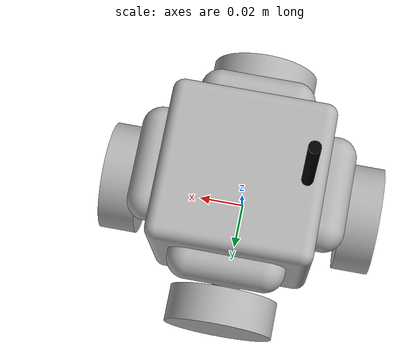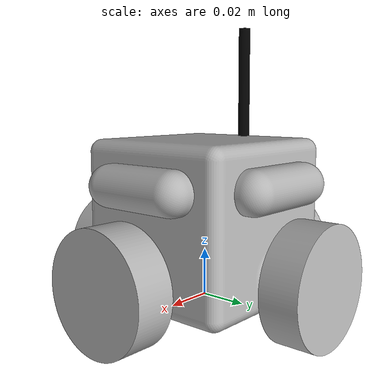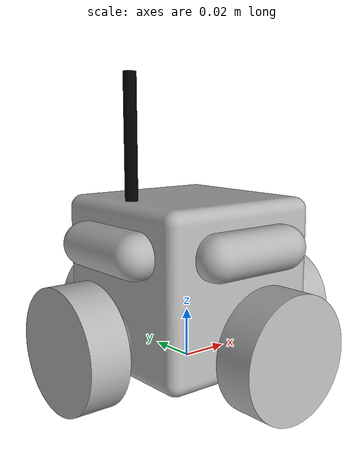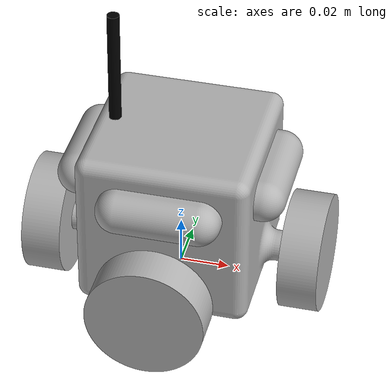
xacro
<?xml version="1.0" ?>
<robot name="minibot_urdf" xmlns:xacro="http://www.ros.org/wiki/xacro">

<xacro:include filename="$(find minibot)/urdf/materials.xacro" />
<xacro:include filename="$(find minibot)/urdf/minibot_urdf.gazebo" />

<!-- SLAM Toolbox expects a base_footprint frame by default -->
<link name="base_footprint"/>
<joint name="base_footprint_joint" type="fixed">
  <origin xyz="0 0 0" rpy="0 0 0"/>
  <parent link="base_footprint"/>
  <child link="base_link"/>
</joint>

<link name="base_link">
  <inertial>
    <origin xyz="1.2942974061613468e-13 -1.3261759786386824e-13 0.03341632448103979" rpy="0 0 0"/>
    <mass value="0.262"/>
    <!-- ixx/iyy/izz = original × 0.5712 -->
    <inertia ixx="0.000205" iyy="0.000205" izz="0.000214" ixy="-0.0" iyz="-0.0" ixz="0.0"/>
  </inertial>
  <visual>
    <origin xyz="0 0 0" rpy="0 0 0"/>
    <geometry>
      <mesh filename="package://minibot/meshes/base_link.stl" scale="0.001 0.001 0.001"/>
    </geometry>
    <material name="silver"/>
  </visual>
  <collision>
    <origin xyz="0 0 0" rpy="0 0 0"/>
    <geometry>
      <mesh filename="package://minibot/meshes/base_link.stl" scale="0.001 0.001 0.001"/>
    </geometry>
  </collision>
</link>

<!-- ── WHEELS ───────────────────────────────────────────────────── -->
<!-- Each wheel = 48 mm omni (33 g) + N20 motor (11 g) = 44 g      -->
<!-- Inertia axes: spinning axis carries iyy_max for front/back     -->
<!--               and ixx_max for right/left (axis-aligned)        -->

<link name="wheel_front_1">
  <inertial>
    <origin xyz="9.816526794640485e-18 0.008 3.469446951953614e-18" rpy="0 0 0"/>
    <mass value="0.044"/>
    <!-- spin axis = Y → iyy largest; ixx=izz × 0.6971 -->
    <inertia ixx="6.97e-06" iyy="1.255e-05" izz="6.97e-06" ixy="0.0" iyz="0.0" ixz="0.0"/>
  </inertial>
  <visual>
    <origin xyz="-0.0 -0.045 -0.015" rpy="0 0 0"/>
    <geometry>
      <mesh filename="package://minibot/meshes/wheel_front_1.stl" scale="0.001 0.001 0.001"/>
    </geometry>
    <material name="silver"/>
  </visual>
  <!-- Cylinder collision: centre at link origin = wheel axle, axis along spin-axis Y -->
  <!-- radius=0.024m (48mm dia), length=0.014m (wheel width). Visual stays as mesh. -->
  <collision>
    <origin xyz="0 0 0" rpy="1.5708 0 0"/>
    <geometry>
      <cylinder radius="0.024" length="0.014"/>
    </geometry>
  </collision>
</link>

<link name="wheel_right_1">
  <inertial>
    <origin xyz="0.008 4.9082633973202426e-18 3.469446951953614e-18" rpy="0 0 0"/>
    <mass value="0.044"/>
    <!-- spin axis = X → ixx largest -->
    <inertia ixx="1.255e-05" iyy="6.97e-06" izz="6.97e-06" ixy="0.0" iyz="0.0" ixz="0.0"/>
  </inertial>
  <visual>
    <origin xyz="-0.045 -0.0 -0.015" rpy="0 0 0"/>
    <geometry>
      <mesh filename="package://minibot/meshes/wheel_right_1.stl" scale="0.001 0.001 0.001"/>
    </geometry>
    <material name="silver"/>
  </visual>
  <!-- Cylinder collision: centre at link origin = wheel axle, axis along spin-axis X -->
  <collision>
    <origin xyz="0 0 0" rpy="0 1.5708 0"/>
    <geometry>
      <cylinder radius="0.024" length="0.014"/>
    </geometry>
  </collision>
</link>

<link name="wheel_back_1">
  <inertial>
    <origin xyz="-4.9082633973202426e-18 -0.008 3.469446951953614e-18" rpy="0 0 0"/>
    <mass value="0.044"/>
    <!-- spin axis = -Y → iyy largest -->
    <inertia ixx="6.97e-06" iyy="1.255e-05" izz="6.97e-06" ixy="0.0" iyz="-0.0" ixz="0.0"/>
  </inertial>
  <visual>
    <origin xyz="0.0 0.045 -0.015" rpy="0 0 0"/>
    <geometry>
      <mesh filename="package://minibot/meshes/wheel_back_1.stl" scale="0.001 0.001 0.001"/>
    </geometry>
    <material name="silver"/>
  </visual>
  <!-- Cylinder collision: centre at link origin = wheel axle, axis along spin-axis -Y (same as Y) -->
  <collision>
    <origin xyz="0 0 0" rpy="1.5708 0 0"/>
    <geometry>
      <cylinder radius="0.024" length="0.014"/>
    </geometry>
  </collision>
</link>

<link name="wheel_left_1">
  <inertial>
    <origin xyz="-0.008 9.816526794640485e-18 3.469446951953614e-18" rpy="0 0 0"/>
    <mass value="0.044"/>
    <!-- spin axis = -X → ixx largest -->
    <inertia ixx="1.255e-05" iyy="6.97e-06" izz="6.97e-06" ixy="0.0" iyz="0.0" ixz="-0.0"/>
  </inertial>
  <visual>
    <origin xyz="0.045 -0.0 -0.015" rpy="0 0 0"/>
    <geometry>
      <mesh filename="package://minibot/meshes/wheel_left_1.stl" scale="0.001 0.001 0.001"/>
    </geometry>
    <material name="silver"/>
  </visual>
  <!-- Cylinder collision: centre at link origin = wheel axle, axis along spin-axis -X (same as X) -->
  <collision>
    <origin xyz="0 0 0" rpy="0 1.5708 0"/>
    <geometry>
      <cylinder radius="0.024" length="0.014"/>
    </geometry>
  </collision>
</link>

<!-- ── HC-SR04 SONARS ───────────────────────────────────────────── -->
<link name="sensor_front_1">
  <inertial>
    <origin xyz="0 0 0" rpy="0 0 0"/>
    <mass value="0.0085"/>
    <inertia ixx="1.68e-06" iyy="1.68e-06" izz="1.68e-06" ixy="0" iyz="0" ixz="0"/>
  </inertial>
  <visual>
    <origin xyz="0.0 -0.035 -0.0625" rpy="0 0 0"/>
    <geometry>
      <mesh filename="package://minibot/meshes/sensor_front_1.stl" scale="0.001 0.001 0.001"/>
    </geometry>
    <material name="silver"/>
  </visual>
</link>

<link name="sensor_back_1">
  <inertial>
    <origin xyz="0 0 0" rpy="0 0 0"/>
    <mass value="0.0085"/>
    <inertia ixx="1.68e-06" iyy="1.68e-06" izz="1.68e-06" ixy="0" iyz="0" ixz="0"/>
  </inertial>
  <visual>
    <origin xyz="0.0 0.035 -0.0625" rpy="0 0 0"/>
    <geometry>
      <mesh filename="package://minibot/meshes/sensor_back_1.stl" scale="0.001 0.001 0.001"/>
    </geometry>
    <material name="silver"/>
  </visual>
</link>

<link name="sensor_right_1">
  <inertial>
    <origin xyz="0 0 0" rpy="0 0 0"/>
    <mass value="0.0085"/>
    <inertia ixx="1.68e-06" iyy="1.68e-06" izz="1.68e-06" ixy="0" iyz="0" ixz="0"/>
  </inertial>
  <visual>
    <origin xyz="-0.035 0.0 -0.0625" rpy="0 0 0"/>
    <geometry>
      <mesh filename="package://minibot/meshes/sensor_right_1.stl" scale="0.001 0.001 0.001"/>
    </geometry>
    <material name="silver"/>
  </visual>
</link>

<link name="sensor_left_1">
  <inertial>
    <origin xyz="0 0 0" rpy="0 0 0"/>
    <mass value="0.0085"/>
    <inertia ixx="1.68e-06" iyy="1.68e-06" izz="1.68e-06" ixy="0" iyz="0" ixz="0"/>
  </inertial>
  <visual>
    <origin xyz="0.035 0.0 -0.0625" rpy="0 0 0"/>
    <geometry>
      <mesh filename="package://minibot/meshes/sensor_left_1.stl" scale="0.001 0.001 0.001"/>
    </geometry>
    <material name="silver"/>
  </visual>
</link>

<!-- ── WHEEL JOINTS ─────────────────────────────────────────────── -->
<!-- type="continuous" → position-unlimited rotation                -->

<joint name="wheel_front_joint" type="continuous">
  <origin xyz="0.0 0.045 0.015" rpy="0 0 0"/>
  <parent link="base_link"/>
  <child link="wheel_front_1"/>
  <axis xyz="0.0 1.0 0.0"/>
  <limit effort="0.05" velocity="31.416"/>
  <dynamics damping="0.001" friction="0.01"/>
</joint>

<joint name="wheel_right_joint" type="continuous">
  <origin xyz="0.045 0.0 0.015" rpy="0 0 0"/>
  <parent link="base_link"/>
  <child link="wheel_right_1"/>
  <axis xyz="1.0 0.0 0.0"/>
  <limit effort="0.05" velocity="31.416"/>
  <dynamics damping="0.001" friction="0.01"/>
</joint>

<joint name="wheel_back_joint" type="continuous">
  <origin xyz="0.0 -0.045 0.015" rpy="0 0 0"/>
  <parent link="base_link"/>
  <child link="wheel_back_1"/>
  <axis xyz="0.0 -1.0 0.0"/>
  <limit effort="0.05" velocity="31.416"/>
  <dynamics damping="0.001" friction="0.01"/>
</joint>

<joint name="wheel_left_joint" type="continuous">
  <origin xyz="-0.045 0.0 0.015" rpy="0 0 0"/>
  <parent link="base_link"/>
  <child link="wheel_left_1"/>
  <axis xyz="-1.0 0.0 0.0"/>
  <limit effort="0.05" velocity="31.416"/>
  <dynamics damping="0.001" friction="0.01"/>
</joint>

<joint name="sensor_front_joint" type="fixed">
  <origin xyz="0.0 0.035 0.0625" rpy="0 0 0"/>
  <parent link="base_link"/>
  <child link="sensor_front_1"/>
</joint>

<joint name="sensor_back_joint" type="fixed">
  <origin xyz="0.0 -0.035 0.0625" rpy="0 0 0"/>
  <parent link="base_link"/>
  <child link="sensor_back_1"/>
</joint>

<joint name="sensor_right_joint" type="fixed">
  <origin xyz="0.035 0.0 0.0625" rpy="0 0 0"/>
  <parent link="base_link"/>
  <child link="sensor_right_1"/>
</joint>

<joint name="sensor_left_joint" type="fixed">
  <origin xyz="-0.035 0.0 0.0625" rpy="0 0 0"/>
  <parent link="base_link"/>
  <child link="sensor_left_1"/>
</joint>

<ros2_control name="GazeboSystem" type="system">
  <hardware>
    <plugin>gazebo_ros2_control/GazeboSystem</plugin>
  </hardware>

  <!-- wheel_front_1  spin axis = +Y -->
  <joint name="wheel_front_joint">
    <command_interface name="velocity">
      <param name="min">-31.416</param>
      <param name="max"> 31.416</param>
    </command_interface>
    <state_interface name="position"/>
    <state_interface name="velocity"/>
  </joint>

  <!-- wheel_right_1  spin axis = +X -->
  <joint name="wheel_right_joint">
    <command_interface name="velocity">
      <param name="min">-31.416</param>
      <param name="max"> 31.416</param>
    </command_interface>
    <state_interface name="position"/>
    <state_interface name="velocity"/>
  </joint>

  <!-- wheel_back_1   spin axis = -Y -->
  <joint name="wheel_back_joint">
    <command_interface name="velocity">
      <param name="min">-31.416</param>
      <param name="max"> 31.416</param>
    </command_interface>
    <state_interface name="position"/>
    <state_interface name="velocity"/>
  </joint>

  <!-- wheel_left_1   spin axis = -X -->
  <joint name="wheel_left_joint">
    <command_interface name="velocity">
      <param name="min">-31.416</param>
      <param name="max"> 31.416</param>
    </command_interface>
    <state_interface name="position"/>
    <state_interface name="velocity"/>
  </joint>
</ros2_control>

<!-- ── NRF24L01 Transceiver ─────────────────────────────────────── -->
<link name="nrf24l01_link">
  <inertial>
    <mass value="0.0017"/>
    <origin xyz="0 0 0" rpy="0 0 0"/>
    <inertia ixx="1e-6" iyy="1e-6" izz="1e-6" ixy="0" iyz="0" ixz="0"/>
  </inertial>
  <visual>
    <!-- PCB -->
    <origin xyz="0 0 0" rpy="0 0 0"/>
    <geometry>
      <box size="0.015 0.029 0.0015"/>
    </geometry>
    <material name="green">
      <color rgba="0 0.8 0 1"/>
    </material>
  </visual>
  <visual>
    <!-- Antenna -->
    <origin xyz="-0.007 0 0.04" rpy="0 0 0"/>
    <geometry>
      <cylinder radius="0.0025" length="0.08"/>
    </geometry>
    <material name="black">
      <color rgba="0 0 0 1"/>
    </material>
  </visual>
  <collision>
    <origin xyz="0 0 0.04" rpy="0 0 0"/>
    <geometry>
      <cylinder radius="0.01" length="0.08"/>
    </geometry>
  </collision>
</link>

<joint name="nrf24l01_joint" type="fixed">
  <origin xyz="-0.02 0.0 0.035" rpy="0 0 0"/>
  <parent link="base_link"/>
  <child link="nrf24l01_link"/>
</joint>

</robot>

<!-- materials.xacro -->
<robot name="minibot_urdf" xmlns:xacro="http://www.ros.org/wiki/xacro" >

<material name="silver">
  <color rgba="0.700 0.700 0.700 1.000"/>
</material>

</robot>

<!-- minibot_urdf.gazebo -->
<robot name="minibot_urdf" xmlns:xacro="http://www.ros.org/wiki/xacro">

<xacro:property name="body_color" value="Gazebo/Silver" />

<gazebo>
  <plugin name="gazebo_ros2_control" filename="libgazebo_ros2_control.so">
    <parameters>$(find minibot)/config/controllers.yaml</parameters>
    <ros>
      <namespace>/</namespace>
    </ros>
  </plugin>
</gazebo>

<gazebo reference="base_link">
  <material>${body_color}</material>
  <mu1>0.4</mu1>
  <mu2>0.4</mu2>
  <selfCollide>false</selfCollide>
  <gravity>true</gravity>
</gazebo>

<!-- GROUND TRUTH ODOMETRY PLUGIN -->
<gazebo>
  <plugin name="gazebo_ros_p3d" filename="libgazebo_ros_p3d.so">
    <ros>
      <namespace>/</namespace>
      <remapping>odom:=odom</remapping>
    </ros>
    <frame_name>odom</frame_name>
    <body_name>base_footprint</body_name>
    <update_rate>50.0</update_rate>
    <gaussian_noise>0.01</gaussian_noise>
  </plugin>
</gazebo>

<gazebo reference="wheel_front_1">
  <material>${body_color}</material>
  <mu1>1.0</mu1>
  <mu2>0.0</mu2>
  <fdir1>1 0 0</fdir1>
  <kp>1000000.0</kp>
  <kd>1.0</kd>
  <selfCollide>false</selfCollide>
</gazebo>

<gazebo reference="wheel_right_1">
  <material>${body_color}</material>
  <mu1>1.0</mu1>
  <mu2>0.0</mu2>
  <fdir1>0 1 0</fdir1>
  <kp>1000000.0</kp>
  <kd>1.0</kd>
  <selfCollide>false</selfCollide>
</gazebo>

<gazebo reference="wheel_back_1">
  <material>${body_color}</material>
  <mu1>1.0</mu1>
  <mu2>0.0</mu2>
  <fdir1>1 0 0</fdir1>
  <kp>1000000.0</kp>
  <kd>1.0</kd>
  <selfCollide>false</selfCollide>
</gazebo>

<gazebo reference="wheel_left_1">
  <material>${body_color}</material>
  <mu1>1.0</mu1>
  <mu2>0.0</mu2>
  <fdir1>0 1 0</fdir1>
  <kp>1000000.0</kp>
  <kd>1.0</kd>
  <selfCollide>false</selfCollide>
</gazebo>

<gazebo reference="sensor_front_1">
  <sensor name="sensor_front" type="ray">
    <pose>0 0 0 0 0 1.570796</pose>
    <visualize>true</visualize>
    <update_rate>10</update_rate>
    <ray>
      <scan>
        <horizontal>
          <samples>120</samples>
          <resolution>1</resolution>
          <min_angle>-1.047197</min_angle>
          <max_angle>1.047197</max_angle>
        </horizontal>
      </scan>
      <range>
        <min>0.02</min>
        <max>4.5</max>
        <resolution>0.01</resolution>
      </range>
    </ray>
    <plugin name="gazebo_ros_front_sonar" filename="libgazebo_ros_ray_sensor.so">
      <ros>
        <remapping>~/out:=/scan/front</remapping>
      </ros>
      <output_type>sensor_msgs/LaserScan</output_type>
      <frame_name>sensor_front_1</frame_name>
    </plugin>
  </sensor>
</gazebo>

<gazebo reference="sensor_back_1">
  <sensor name="sensor_back" type="ray">
    <pose>0 0 0 0 0 -1.570796</pose>
    <visualize>true</visualize>
    <update_rate>10</update_rate>
    <ray>
      <scan>
        <horizontal>
          <samples>120</samples>
          <resolution>1</resolution>
          <min_angle>-1.047197</min_angle>
          <max_angle>1.047197</max_angle>
        </horizontal>
      </scan>
      <range>
        <min>0.02</min>
        <max>4.5</max>
        <resolution>0.01</resolution>
      </range>
    </ray>
    <plugin name="gazebo_ros_back_sonar" filename="libgazebo_ros_ray_sensor.so">
      <ros>
        <remapping>~/out:=/scan/back</remapping>
      </ros>
      <output_type>sensor_msgs/LaserScan</output_type>
      <frame_name>sensor_back_1</frame_name>
    </plugin>
  </sensor>
</gazebo>

<gazebo reference="sensor_left_1">
  <sensor name="sensor_left" type="ray">
    <pose>0 0 0 0 0 3.141592</pose>
    <visualize>true</visualize>
    <update_rate>10</update_rate>
    <ray>
      <scan>
        <horizontal>
          <samples>120</samples>
          <resolution>1</resolution>
          <min_angle>-1.047197</min_angle>
          <max_angle>1.047197</max_angle>
        </horizontal>
      </scan>
      <range>
        <min>0.02</min>
        <max>4.5</max>
        <resolution>0.01</resolution>
      </range>
    </ray>
    <plugin name="gazebo_ros_left_sonar" filename="libgazebo_ros_ray_sensor.so">
      <ros>
        <remapping>~/out:=/scan/left</remapping>
      </ros>
      <output_type>sensor_msgs/LaserScan</output_type>
      <frame_name>sensor_left_1</frame_name>
    </plugin>
  </sensor>
</gazebo>

<gazebo reference="sensor_right_1">
  <sensor name="sensor_right" type="ray">
    <pose>0 0 0 0 0 0</pose>
    <visualize>true</visualize>
    <update_rate>10</update_rate>
    <ray>
      <scan>
        <horizontal>
          <samples>120</samples>
          <resolution>1</resolution>
          <min_angle>-1.047197</min_angle>
          <max_angle>1.047197</max_angle>
        </horizontal>
      </scan>
      <range>
        <min>0.02</min>
        <max>4.5</max>
        <resolution>0.01</resolution>
      </range>
    </ray>
    <plugin name="gazebo_ros_right_sonar" filename="libgazebo_ros_ray_sensor.so">
      <ros>
        <remapping>~/out:=/scan/right</remapping>
      </ros>
      <output_type>sensor_msgs/LaserScan</output_type>
      <frame_name>sensor_right_1</frame_name>
    </plugin>
  </sensor>
</gazebo>

<gazebo reference="nrf24l01_link">
  <material>Gazebo/Green</material>
  <selfCollide>false</selfCollide>
</gazebo>

</robot>
